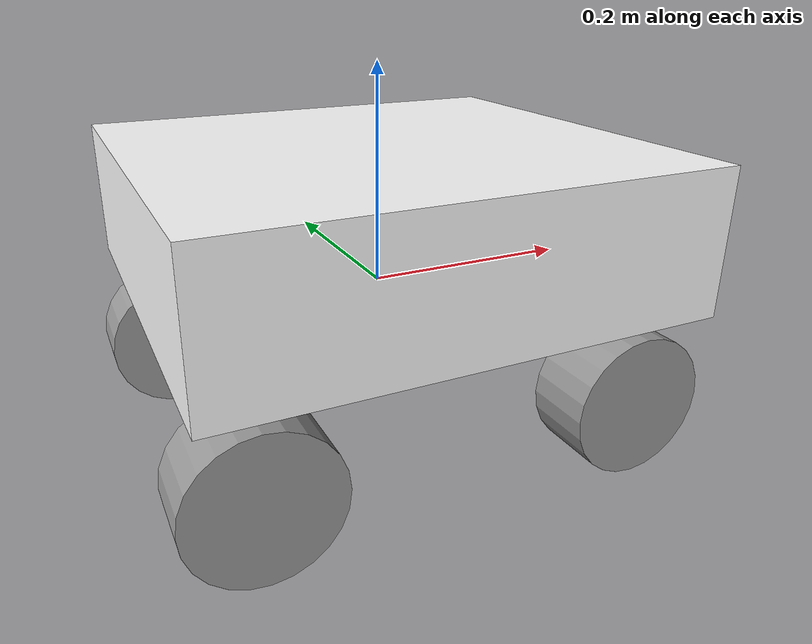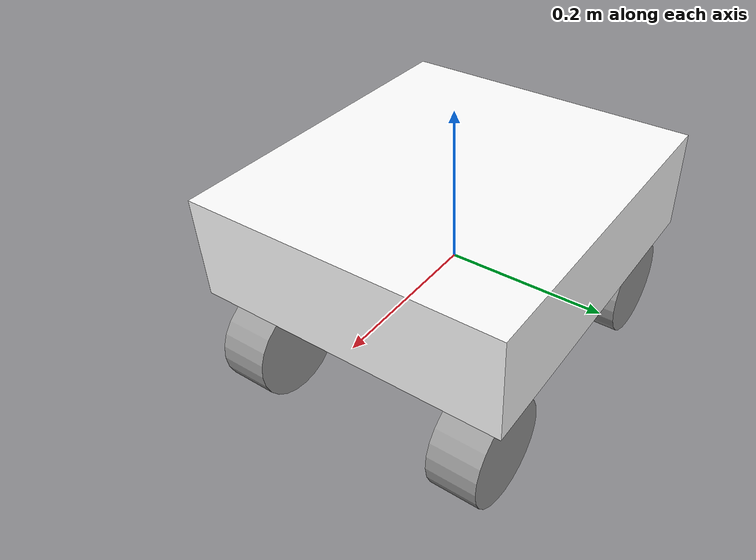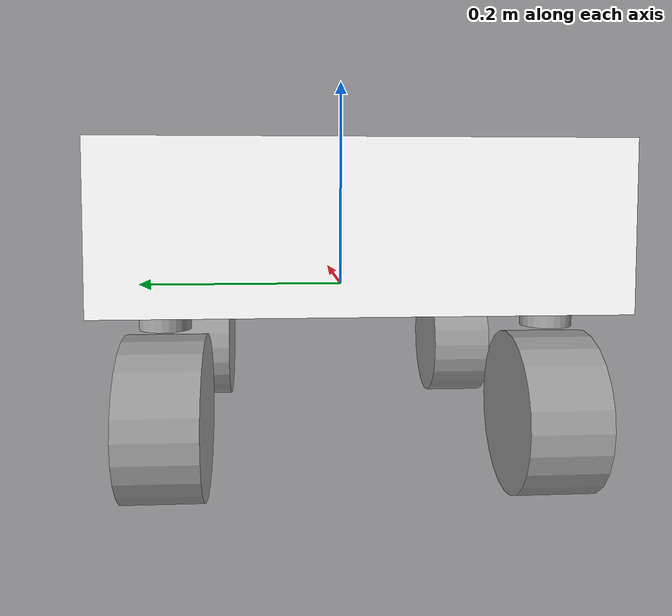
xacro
<?xml version="1.0"?>
<robot xmlns:xacro="http://www.ros.org/wiki/xacro">

    <xacro:include filename="inertial_macros.xacro"/>

    <!-- MATERIAL -->

    <material name="white">
        <color rgba="1 1 1 1" />
    </material>

    <material name="orange">
        <color rgba="1 0.3 0.1 1"/>
    </material>

    <material name="blue">
        <color rgba="0.2 0.2 1 1"/>
    </material>

    <material name="gray">
        <color rgba="0.6 0.6 0.6 1"/>
    </material>

    <material name="red">
        <color rgba="1 0 0 1"/>
    </material>

    <!-- BASE_LINK -->

    <link name="base_link">

    </link>

    <!-- BASE_FOOTPRINT LINK -->

    <joint name="base_footprint_joint" type="fixed">
        <parent link="base_link"/>
        <child link="base_footprint"/>
        <origin xyz="0 0 0" rpy="0 0 0"/>
    </joint>

    <link name="base_footprint">

    </link>

    <!-- CHASSIS -->

    <joint name="chassis_joint" type="fixed">
        <parent link="base_link"/>
        <child link="chassis_link"/>
        <origin xyz="-0.22 0 0"/>
    </joint>

    <link name="chassis_link">
        <visual>
            <origin xyz="0.22 0 0.065"/>
            <geometry>
                <box size="0.44 0.4 0.13"/>
            </geometry>
            <material name='white'/>
        </visual>
        <collision>
            <origin xyz="0.22 0 0.065"/>
            <geometry>
                <box size="0.44 0.4 0.13"/>
            </geometry>
        </collision>
        <xacro:inertial_box mass="5.0" x="0.44" y="0.4" z='0.13'>
            <origin xyz="0.22 0 0.065" rpy="0 0 0"/>
        </xacro:inertial_box>
    </link>

    <gazebo reference="chassis_link">
        <material>Gazebo/White</material>
    </gazebo>

    <!-- FRONT_LEFT_WHEEL -->

    <joint name="front_left_wheel_joint" type="continuous">
        <parent link="front_left_steer_link"/>
        <child link="front_left_wheel_link"/>
        <origin xyz="0 0 -0.0775" rpy="-${pi/2} 0 0"/>
        <axis xyz="0 0 1"/>
    </joint>

    <link name="front_left_wheel_link">
        <visual>
            <origin xyz="0 0 0"/>
            <geometry>
                <cylinder radius="0.065" length="0.0628"/>
            </geometry>
            <material name='gray'/>
        </visual>
        <collision>
            <geometry>
                <cylinder radius="0.065" length="0.0628"/>
            </geometry>
        </collision>
        <xacro:inertial_cylinder mass="2.0" length="0.0628" radius="0.065">
            <origin xyz="0 0 0" rpy="0 0 0"/>
        </xacro:inertial_cylinder>
    </link>

    <gazebo reference="front_left_wheel_link">
        <material>Gazebo/Gray</material>
        <mu1 value="0.5"/>
        <mu2 value="0.5"/>
        <kp>10000000.0</kp>
        <kd>1.0</kd>
    </gazebo>

    <!-- FRONT_RIGHT_WHEEL -->

    <joint name="front_right_wheel_joint" type="continuous">
        <parent link="front_right_steer_link"/>
        <child link="front_right_wheel_link"/>
        <origin xyz="0 0 -0.0775" rpy="${pi/2} 0 0"/>
        <axis xyz="0 0 -1"/>
    </joint>

    <link name="front_right_wheel_link">
        <visual>
            <origin xyz="0 0 0"/>
            <geometry>
                <cylinder radius="0.065" length="0.0628"/>
            </geometry>
            <material name='gray'/>
        </visual>
        <collision>
            <geometry>
                <cylinder radius="0.065" length="0.0628"/>
            </geometry>
        </collision>
        <xacro:inertial_cylinder mass="2.0" length="0.0628" radius="0.065">
            <origin xyz="0 0 0" rpy="0 0 0"/>
        </xacro:inertial_cylinder>
    </link>

    <gazebo reference="front_right_wheel_link">
        <material>Gazebo/Gray</material>
        <mu1 value="0.5"/>
        <mu2 value="0.5"/>
        <kp>10000000.0</kp>
        <kd>1.0</kd>
    </gazebo>

    <!-- REAR_LEFT_WHEEL -->

    <joint name="rear_left_wheel_joint" type="continuous">
        <parent link="rear_left_steer_link"/>
        <child link="rear_left_wheel_link"/>
        <origin xyz="0 0 -0.0775" rpy="-${pi/2} 0 0"/>
        <axis xyz="0 0 1"/>
    </joint>

    <link name="rear_left_wheel_link">
        <visual>
            <origin xyz="0 0 0"/>
            <geometry>
                <cylinder radius="0.065" length="0.0628"/>
            </geometry>
            <material name='gray'/>
        </visual>
        <collision>
            <geometry>
                <cylinder radius="0.065" length="0.0628"/>
            </geometry>
        </collision>
        <xacro:inertial_cylinder mass="2.0" length="0.0628" radius="0.065">
            <origin xyz="0 0 0" rpy="0 0 0"/>
        </xacro:inertial_cylinder>
    </link>

    <gazebo reference="rear_left_wheel_link">
        <material>Gazebo/Gray</material>
        <mu1 value="0.5"/>
        <mu2 value="0.5"/>
        <kp>10000000.0</kp>
        <kd>1.0</kd>
    </gazebo>

    <!-- REAR_RIGHT_WHEEL -->

    <joint name="rear_right_wheel_joint" type="continuous">
        <parent link="rear_right_steer_link"/>
        <child link="rear_right_wheel_link"/>
        <origin xyz="0 0 -0.0775" rpy="${pi/2} 0 0"/>
        <axis xyz="0 0 -1"/>
    </joint>

    <link name="rear_right_wheel_link">
        <visual>
            <origin xyz="0 0 0"/>
            <geometry>
                <cylinder radius="0.065" length="0.0628"/>
            </geometry>
            <material name='gray'/>
        </visual>
        <collision>
            <geometry>
                <cylinder radius="0.065" length="0.0628"/>
            </geometry>
        </collision>
        <xacro:inertial_cylinder mass="2.0" length="0.0628" radius="0.065">
            <origin xyz="0 0 0" rpy="0 0 0"/>
        </xacro:inertial_cylinder>
    </link>

    <gazebo reference="rear_right_wheel_link">
        <material>Gazebo/Gray</material>
        <mu1 value="0.5"/>
        <mu2 value="0.5"/>
        <kp>10000000.0</kp>
        <kd>1.0</kd>
    </gazebo>

    <!-- FRONT_LEFT_STEER -->

    <joint name="front_left_steer_joint" type="continuous">
        <parent link="base_link"/>
        <child link="front_left_steer_link"/>
        <origin xyz="0.17 0.15 -0.0075"/>
        <axis xyz="0 0 1"/>
    </joint>

    <link name="front_left_steer_link">
        <visual>
            <origin xyz="0 0 0"/>
            <geometry>
                <cylinder radius="0.02" length="0.015"/>
            </geometry>
            <material name='gray'/>
        </visual>
        <collision>
            <geometry>
                <cylinder radius="0.02" length="0.015"/>
            </geometry>
        </collision>
        <xacro:inertial_cylinder mass="0.5" length="0.015" radius="0.02">
            <origin xyz="0 0 0" rpy="0 0 0"/>
        </xacro:inertial_cylinder>
    </link>

    <gazebo reference="front_left_steer_link">
        <material>Gazebo/Gray</material>
        <mu1 value="0.5"/>
        <mu2 value="0.5"/>
    </gazebo>

    <!-- FRONT_RIGHT_STEER -->

    <joint name="front_right_steer_joint" type="continuous">
        <parent link="base_link"/>
        <child link="front_right_steer_link"/>
        <origin xyz="0.17 -0.15 -0.0075"/>
        <axis xyz="0 0 1"/>
    </joint>

    <link name="front_right_steer_link">
        <visual>
            <origin xyz="0 0 0"/>
            <geometry>
                <cylinder radius="0.02" length="0.015"/>
            </geometry>
            <material name='gray'/>
        </visual>
        <collision>
            <geometry>
                <cylinder radius="0.02" length="0.015"/>
            </geometry>
        </collision>
        <xacro:inertial_cylinder mass="0.5" length="0.015" radius="0.02">
            <origin xyz="0 0 0" rpy="0 0 0"/>
        </xacro:inertial_cylinder>
    </link>

    <gazebo reference="front_right_steer_link">
        <material>Gazebo/Gray</material>
        <mu1 value="0.5"/>
        <mu2 value="0.5"/>
    </gazebo>

    <!-- REAR_LEFT_STEER -->

    <joint name="rear_left_steer_joint" type="continuous">
        <parent link="base_link"/>
        <child link="rear_left_steer_link"/>
        <origin xyz="-0.17 0.15 -0.0075"/>
        <axis xyz="0 0 1"/>
    </joint>

    <link name="rear_left_steer_link">
        <visual>
            <origin xyz="0 0 0"/>
            <geometry>
                <cylinder radius="0.02" length="0.015"/>
            </geometry>
            <material name='gray'/>
        </visual>
        <collision>
            <geometry>
                <cylinder radius="0.02" length="0.015"/>
            </geometry>
        </collision>
        <xacro:inertial_cylinder mass="0.5" length="0.015" radius="0.02">
            <origin xyz="0 0 0" rpy="0 0 0"/>
        </xacro:inertial_cylinder>
    </link>

    <gazebo reference="rear_left_steer_link">
        <material>Gazebo/Gray</material>
        <mu1 value="0.5"/>
        <mu2 value="0.5"/>
    </gazebo>

    <!-- REAR_RIGHT_STEER -->

    <joint name="rear_right_steer_joint" type="continuous">
        <parent link="base_link"/>
        <child link="rear_right_steer_link"/>
        <origin xyz="-0.17 -0.15 -0.0075"/>
        <axis xyz="0 0 1"/>
    </joint>

    <link name="rear_right_steer_link">
        <visual>
            <origin xyz="0 0 0"/>
            <geometry>
                <cylinder radius="0.02" length="0.015"/>
            </geometry>
            <material name='gray'/>
        </visual>
        <collision>
            <geometry>
                <cylinder radius="0.02" length="0.015"/>
            </geometry>
        </collision>
        <xacro:inertial_cylinder mass="0.5" length="0.015" radius="0.02">
            <origin xyz="0 0 0" rpy="0 0 0"/>
        </xacro:inertial_cylinder>
    </link>

    <gazebo reference="rear_right_steer_link">
        <material>Gazebo/Gray</material>
        <mu1 value="0.5"/>
        <mu2 value="0.5"/>
    </gazebo>

</robot>
